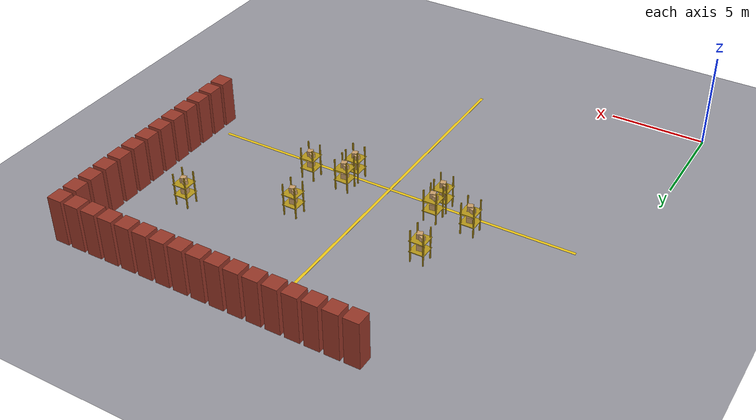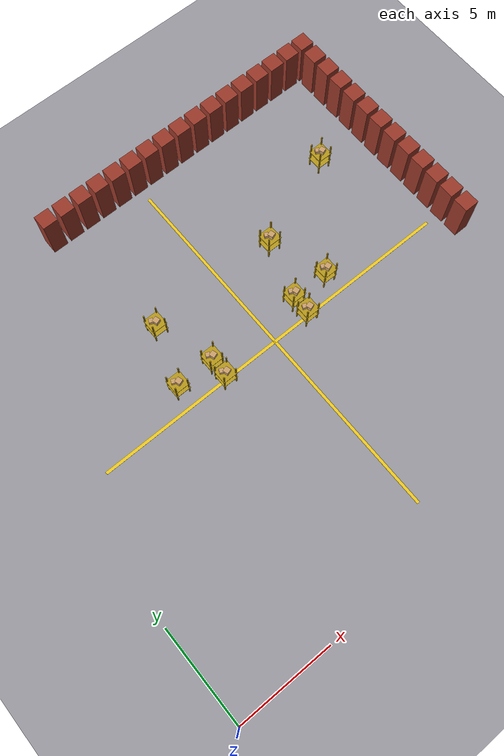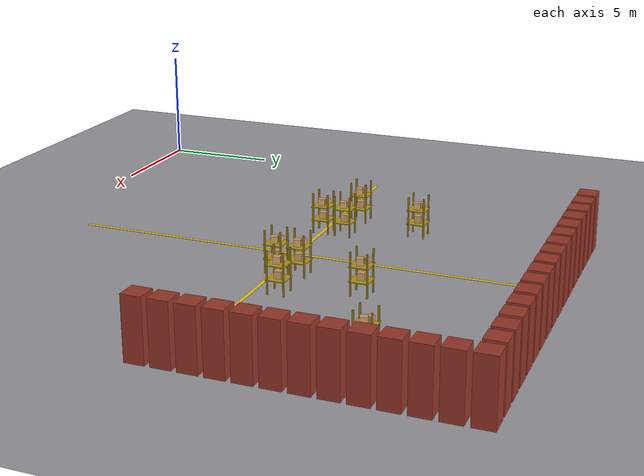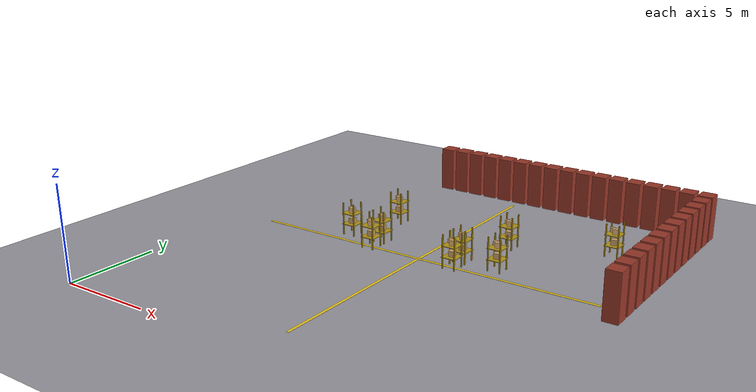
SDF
<sdf version="1.9">
 <world name="agv_nav">
  <model name="ground_plane">
   <static>true</static>
   <link name="link">
    <collision name="collision">
     <geometry><plane><normal>0 0 1</normal><size>100 100</size></plane></geometry>
    </collision>
    <visual name="visual">
     <geometry><plane><normal>0 0 1</normal><size>100 100</size></plane></geometry>
     <material>
      <ambient>0.55 0.55 0.58 1</ambient>
      <diffuse>0.6 0.6 0.63 1</diffuse>
      <specular>0.2 0.2 0.2 1</specular>
     </material>
    </visual>
   </link>
  </model>
  <model name="wall_45">
   <static>true</static>
   <pose>23 11 1.25 0 0 0</pose>
   <link name="link">
    <collision name="collision"><geometry><box><size>0.8 0.8 2.5</size></box></geometry></collision>
    <visual name="visual">
     <geometry><box><size>0.8 0.8 2.5</size></box></geometry>
     <material>
      <ambient>0.5 0.18 0.14 1</ambient>
      <diffuse>0.6 0.22 0.16 1</diffuse>
      <specular>0.1 0.1 0.1 1</specular>
     </material>
    </visual>
   </link>
  </model>
  <model name="obs_18">
   <static>true</static>
   <pose>9 12 0.9 0 0 0</pose>
   <link name="link">
    <collision name="collision"><geometry><box><size>0.8 0.8 1.8</size></box></geometry></collision>
    <visual name="post_0">
     <pose>0.34 0.34 0 0 0 0</pose>
     <geometry><box><size>0.06 0.06 1.8</size></box></geometry>
     <material><ambient>0.55 0.45 0.05 1</ambient><diffuse>0.65 0.52 0.06 1</diffuse></material>
    </visual>
    <visual name="post_1">
     <pose>-0.34 0.34 0 0 0 0</pose>
     <geometry><box><size>0.06 0.06 1.8</size></box></geometry>
     <material><ambient>0.55 0.45 0.05 1</ambient><diffuse>0.65 0.52 0.06 1</diffuse></material>
    </visual>
    <visual name="post_2">
     <pose>0.34 -0.34 0 0 0 0</pose>
     <geometry><box><size>0.06 0.06 1.8</size></box></geometry>
     <material><ambient>0.55 0.45 0.05 1</ambient><diffuse>0.65 0.52 0.06 1</diffuse></material>
    </visual>
    <visual name="post_3">
     <pose>-0.34 -0.34 0 0 0 0</pose>
     <geometry><box><size>0.06 0.06 1.8</size></box></geometry>
     <material><ambient>0.55 0.45 0.05 1</ambient><diffuse>0.65 0.52 0.06 1</diffuse></material>
    </visual>
    <visual name="plank_0">
     <pose>0 0 -0.3 0 0 0</pose>
     <geometry><box><size>0.8 0.8 0.04</size></box></geometry>
     <material><ambient>0.6 0.5 0.08 1</ambient><diffuse>0.72 0.6 0.1 1</diffuse></material>
    </visual>
    <visual name="plank_1">
     <pose>0 0 0.3 0 0 0</pose>
     <geometry><box><size>0.8 0.8 0.04</size></box></geometry>
     <material><ambient>0.6 0.5 0.08 1</ambient><diffuse>0.72 0.6 0.1 1</diffuse></material>
    </visual>
    <visual name="cbox_0">
     <pose>0.05 -0.05 0.47 0 0 0.3</pose>
     <geometry><box><size>0.28 0.28 0.28</size></box></geometry>
     <material><ambient>0.72 0.56 0.38 1</ambient><diffuse>0.8 0.63 0.42 1</diffuse></material>
    </visual>
    <visual name="cbox_1">
     <pose>-0.15 0.1 0.47 0 0 -0.4</pose>
     <geometry><box><size>0.22 0.22 0.22</size></box></geometry>
     <material><ambient>0.72 0.56 0.38 1</ambient><diffuse>0.8 0.63 0.42 1</diffuse></material>
    </visual>
    <visual name="cbox_2">
     <pose>0.0 0.0 -0.13 0 0 0.1</pose>
     <geometry><box><size>0.3 0.3 0.3</size></box></geometry>
     <material><ambient>0.72 0.56 0.38 1</ambient><diffuse>0.8 0.63 0.42 1</diffuse></material>
    </visual>
   </link>
  </model>
  <model name="obs_19">
   <static>true</static>
   <pose>14 12 0.9 0 0 0</pose>
   <link name="link">
    <collision name="collision"><geometry><box><size>0.8 0.8 1.8</size></box></geometry></collision>
    <visual name="post_0">
     <pose>0.34 0.34 0 0 0 0</pose>
     <geometry><box><size>0.06 0.06 1.8</size></box></geometry>
     <material><ambient>0.55 0.45 0.05 1</ambient><diffuse>0.65 0.52 0.06 1</diffuse></material>
    </visual>
    <visual name="post_1">
     <pose>-0.34 0.34 0 0 0 0</pose>
     <geometry><box><size>0.06 0.06 1.8</size></box></geometry>
     <material><ambient>0.55 0.45 0.05 1</ambient><diffuse>0.65 0.52 0.06 1</diffuse></material>
    </visual>
    <visual name="post_2">
     <pose>0.34 -0.34 0 0 0 0</pose>
     <geometry><box><size>0.06 0.06 1.8</size></box></geometry>
     <material><ambient>0.55 0.45 0.05 1</ambient><diffuse>0.65 0.52 0.06 1</diffuse></material>
    </visual>
    <visual name="post_3">
     <pose>-0.34 -0.34 0 0 0 0</pose>
     <geometry><box><size>0.06 0.06 1.8</size></box></geometry>
     <material><ambient>0.55 0.45 0.05 1</ambient><diffuse>0.65 0.52 0.06 1</diffuse></material>
    </visual>
    <visual name="plank_0">
     <pose>0 0 -0.3 0 0 0</pose>
     <geometry><box><size>0.8 0.8 0.04</size></box></geometry>
     <material><ambient>0.6 0.5 0.08 1</ambient><diffuse>0.72 0.6 0.1 1</diffuse></material>
    </visual>
    <visual name="plank_1">
     <pose>0 0 0.3 0 0 0</pose>
     <geometry><box><size>0.8 0.8 0.04</size></box></geometry>
     <material><ambient>0.6 0.5 0.08 1</ambient><diffuse>0.72 0.6 0.1 1</diffuse></material>
    </visual>
    <visual name="cbox_0">
     <pose>0.05 -0.05 0.47 0 0 0.3</pose>
     <geometry><box><size>0.28 0.28 0.28</size></box></geometry>
     <material><ambient>0.72 0.56 0.38 1</ambient><diffuse>0.8 0.63 0.42 1</diffuse></material>
    </visual>
    <visual name="cbox_1">
     <pose>-0.15 0.1 0.47 0 0 -0.4</pose>
     <geometry><box><size>0.22 0.22 0.22</size></box></geometry>
     <material><ambient>0.72 0.56 0.38 1</ambient><diffuse>0.8 0.63 0.42 1</diffuse></material>
    </visual>
    <visual name="cbox_2">
     <pose>0.0 0.0 -0.13 0 0 0.1</pose>
     <geometry><box><size>0.3 0.3 0.3</size></box></geometry>
     <material><ambient>0.72 0.56 0.38 1</ambient><diffuse>0.8 0.63 0.42 1</diffuse></material>
    </visual>
   </link>
  </model>
  <model name="wall_47">
   <static>true</static>
   <pose>23 12 1.25 0 0 0</pose>
   <link name="link">
    <collision name="collision"><geometry><box><size>0.8 0.8 2.5</size></box></geometry></collision>
    <visual name="visual">
     <geometry><box><size>0.8 0.8 2.5</size></box></geometry>
     <material>
      <ambient>0.5 0.18 0.14 1</ambient>
      <diffuse>0.6 0.22 0.16 1</diffuse>
      <specular>0.1 0.1 0.1 1</specular>
     </material>
    </visual>
   </link>
  </model>
  <model name="obs_20">
   <static>true</static>
   <pose>7 13 0.9 0 0 0</pose>
   <link name="link">
    <collision name="collision"><geometry><box><size>0.8 0.8 1.8</size></box></geometry></collision>
    <visual name="post_0">
     <pose>0.34 0.34 0 0 0 0</pose>
     <geometry><box><size>0.06 0.06 1.8</size></box></geometry>
     <material><ambient>0.55 0.45 0.05 1</ambient><diffuse>0.65 0.52 0.06 1</diffuse></material>
    </visual>
    <visual name="post_1">
     <pose>-0.34 0.34 0 0 0 0</pose>
     <geometry><box><size>0.06 0.06 1.8</size></box></geometry>
     <material><ambient>0.55 0.45 0.05 1</ambient><diffuse>0.65 0.52 0.06 1</diffuse></material>
    </visual>
    <visual name="post_2">
     <pose>0.34 -0.34 0 0 0 0</pose>
     <geometry><box><size>0.06 0.06 1.8</size></box></geometry>
     <material><ambient>0.55 0.45 0.05 1</ambient><diffuse>0.65 0.52 0.06 1</diffuse></material>
    </visual>
    <visual name="post_3">
     <pose>-0.34 -0.34 0 0 0 0</pose>
     <geometry><box><size>0.06 0.06 1.8</size></box></geometry>
     <material><ambient>0.55 0.45 0.05 1</ambient><diffuse>0.65 0.52 0.06 1</diffuse></material>
    </visual>
    <visual name="plank_0">
     <pose>0 0 -0.3 0 0 0</pose>
     <geometry><box><size>0.8 0.8 0.04</size></box></geometry>
     <material><ambient>0.6 0.5 0.08 1</ambient><diffuse>0.72 0.6 0.1 1</diffuse></material>
    </visual>
    <visual name="plank_1">
     <pose>0 0 0.3 0 0 0</pose>
     <geometry><box><size>0.8 0.8 0.04</size></box></geometry>
     <material><ambient>0.6 0.5 0.08 1</ambient><diffuse>0.72 0.6 0.1 1</diffuse></material>
    </visual>
    <visual name="cbox_0">
     <pose>0.05 -0.05 0.47 0 0 0.3</pose>
     <geometry><box><size>0.28 0.28 0.28</size></box></geometry>
     <material><ambient>0.72 0.56 0.38 1</ambient><diffuse>0.8 0.63 0.42 1</diffuse></material>
    </visual>
    <visual name="cbox_1">
     <pose>-0.15 0.1 0.47 0 0 -0.4</pose>
     <geometry><box><size>0.22 0.22 0.22</size></box></geometry>
     <material><ambient>0.72 0.56 0.38 1</ambient><diffuse>0.8 0.63 0.42 1</diffuse></material>
    </visual>
    <visual name="cbox_2">
     <pose>0.0 0.0 -0.13 0 0 0.1</pose>
     <geometry><box><size>0.3 0.3 0.3</size></box></geometry>
     <material><ambient>0.72 0.56 0.38 1</ambient><diffuse>0.8 0.63 0.42 1</diffuse></material>
    </visual>
   </link>
  </model>
  <model name="obs_21">
   <static>true</static>
   <pose>9 13 0.9 0 0 0</pose>
   <link name="link">
    <collision name="collision"><geometry><box><size>0.8 0.8 1.8</size></box></geometry></collision>
    <visual name="post_0">
     <pose>0.34 0.34 0 0 0 0</pose>
     <geometry><box><size>0.06 0.06 1.8</size></box></geometry>
     <material><ambient>0.55 0.45 0.05 1</ambient><diffuse>0.65 0.52 0.06 1</diffuse></material>
    </visual>
    <visual name="post_1">
     <pose>-0.34 0.34 0 0 0 0</pose>
     <geometry><box><size>0.06 0.06 1.8</size></box></geometry>
     <material><ambient>0.55 0.45 0.05 1</ambient><diffuse>0.65 0.52 0.06 1</diffuse></material>
    </visual>
    <visual name="post_2">
     <pose>0.34 -0.34 0 0 0 0</pose>
     <geometry><box><size>0.06 0.06 1.8</size></box></geometry>
     <material><ambient>0.55 0.45 0.05 1</ambient><diffuse>0.65 0.52 0.06 1</diffuse></material>
    </visual>
    <visual name="post_3">
     <pose>-0.34 -0.34 0 0 0 0</pose>
     <geometry><box><size>0.06 0.06 1.8</size></box></geometry>
     <material><ambient>0.55 0.45 0.05 1</ambient><diffuse>0.65 0.52 0.06 1</diffuse></material>
    </visual>
    <visual name="plank_0">
     <pose>0 0 -0.3 0 0 0</pose>
     <geometry><box><size>0.8 0.8 0.04</size></box></geometry>
     <material><ambient>0.6 0.5 0.08 1</ambient><diffuse>0.72 0.6 0.1 1</diffuse></material>
    </visual>
    <visual name="plank_1">
     <pose>0 0 0.3 0 0 0</pose>
     <geometry><box><size>0.8 0.8 0.04</size></box></geometry>
     <material><ambient>0.6 0.5 0.08 1</ambient><diffuse>0.72 0.6 0.1 1</diffuse></material>
    </visual>
    <visual name="cbox_0">
     <pose>0.05 -0.05 0.47 0 0 0.3</pose>
     <geometry><box><size>0.28 0.28 0.28</size></box></geometry>
     <material><ambient>0.72 0.56 0.38 1</ambient><diffuse>0.8 0.63 0.42 1</diffuse></material>
    </visual>
    <visual name="cbox_1">
     <pose>-0.15 0.1 0.47 0 0 -0.4</pose>
     <geometry><box><size>0.22 0.22 0.22</size></box></geometry>
     <material><ambient>0.72 0.56 0.38 1</ambient><diffuse>0.8 0.63 0.42 1</diffuse></material>
    </visual>
    <visual name="cbox_2">
     <pose>0.0 0.0 -0.13 0 0 0.1</pose>
     <geometry><box><size>0.3 0.3 0.3</size></box></geometry>
     <material><ambient>0.72 0.56 0.38 1</ambient><diffuse>0.8 0.63 0.42 1</diffuse></material>
    </visual>
   </link>
  </model>
  <model name="obs_22">
   <static>true</static>
   <pose>14 13 0.9 0 0 0</pose>
   <link name="link">
    <collision name="collision"><geometry><box><size>0.8 0.8 1.8</size></box></geometry></collision>
    <visual name="post_0">
     <pose>0.34 0.34 0 0 0 0</pose>
     <geometry><box><size>0.06 0.06 1.8</size></box></geometry>
     <material><ambient>0.55 0.45 0.05 1</ambient><diffuse>0.65 0.52 0.06 1</diffuse></material>
    </visual>
    <visual name="post_1">
     <pose>-0.34 0.34 0 0 0 0</pose>
     <geometry><box><size>0.06 0.06 1.8</size></box></geometry>
     <material><ambient>0.55 0.45 0.05 1</ambient><diffuse>0.65 0.52 0.06 1</diffuse></material>
    </visual>
    <visual name="post_2">
     <pose>0.34 -0.34 0 0 0 0</pose>
     <geometry><box><size>0.06 0.06 1.8</size></box></geometry>
     <material><ambient>0.55 0.45 0.05 1</ambient><diffuse>0.65 0.52 0.06 1</diffuse></material>
    </visual>
    <visual name="post_3">
     <pose>-0.34 -0.34 0 0 0 0</pose>
     <geometry><box><size>0.06 0.06 1.8</size></box></geometry>
     <material><ambient>0.55 0.45 0.05 1</ambient><diffuse>0.65 0.52 0.06 1</diffuse></material>
    </visual>
    <visual name="plank_0">
     <pose>0 0 -0.3 0 0 0</pose>
     <geometry><box><size>0.8 0.8 0.04</size></box></geometry>
     <material><ambient>0.6 0.5 0.08 1</ambient><diffuse>0.72 0.6 0.1 1</diffuse></material>
    </visual>
    <visual name="plank_1">
     <pose>0 0 0.3 0 0 0</pose>
     <geometry><box><size>0.8 0.8 0.04</size></box></geometry>
     <material><ambient>0.6 0.5 0.08 1</ambient><diffuse>0.72 0.6 0.1 1</diffuse></material>
    </visual>
    <visual name="cbox_0">
     <pose>0.05 -0.05 0.47 0 0 0.3</pose>
     <geometry><box><size>0.28 0.28 0.28</size></box></geometry>
     <material><ambient>0.72 0.56 0.38 1</ambient><diffuse>0.8 0.63 0.42 1</diffuse></material>
    </visual>
    <visual name="cbox_1">
     <pose>-0.15 0.1 0.47 0 0 -0.4</pose>
     <geometry><box><size>0.22 0.22 0.22</size></box></geometry>
     <material><ambient>0.72 0.56 0.38 1</ambient><diffuse>0.8 0.63 0.42 1</diffuse></material>
    </visual>
    <visual name="cbox_2">
     <pose>0.0 0.0 -0.13 0 0 0.1</pose>
     <geometry><box><size>0.3 0.3 0.3</size></box></geometry>
     <material><ambient>0.72 0.56 0.38 1</ambient><diffuse>0.8 0.63 0.42 1</diffuse></material>
    </visual>
   </link>
  </model>
  <model name="obs_23">
   <static>true</static>
   <pose>16 13 0.9 0 0 0</pose>
   <link name="link">
    <collision name="collision"><geometry><box><size>0.8 0.8 1.8</size></box></geometry></collision>
    <visual name="post_0">
     <pose>0.34 0.34 0 0 0 0</pose>
     <geometry><box><size>0.06 0.06 1.8</size></box></geometry>
     <material><ambient>0.55 0.45 0.05 1</ambient><diffuse>0.65 0.52 0.06 1</diffuse></material>
    </visual>
    <visual name="post_1">
     <pose>-0.34 0.34 0 0 0 0</pose>
     <geometry><box><size>0.06 0.06 1.8</size></box></geometry>
     <material><ambient>0.55 0.45 0.05 1</ambient><diffuse>0.65 0.52 0.06 1</diffuse></material>
    </visual>
    <visual name="post_2">
     <pose>0.34 -0.34 0 0 0 0</pose>
     <geometry><box><size>0.06 0.06 1.8</size></box></geometry>
     <material><ambient>0.55 0.45 0.05 1</ambient><diffuse>0.65 0.52 0.06 1</diffuse></material>
    </visual>
    <visual name="post_3">
     <pose>-0.34 -0.34 0 0 0 0</pose>
     <geometry><box><size>0.06 0.06 1.8</size></box></geometry>
     <material><ambient>0.55 0.45 0.05 1</ambient><diffuse>0.65 0.52 0.06 1</diffuse></material>
    </visual>
    <visual name="plank_0">
     <pose>0 0 -0.3 0 0 0</pose>
     <geometry><box><size>0.8 0.8 0.04</size></box></geometry>
     <material><ambient>0.6 0.5 0.08 1</ambient><diffuse>0.72 0.6 0.1 1</diffuse></material>
    </visual>
    <visual name="plank_1">
     <pose>0 0 0.3 0 0 0</pose>
     <geometry><box><size>0.8 0.8 0.04</size></box></geometry>
     <material><ambient>0.6 0.5 0.08 1</ambient><diffuse>0.72 0.6 0.1 1</diffuse></material>
    </visual>
    <visual name="cbox_0">
     <pose>0.05 -0.05 0.47 0 0 0.3</pose>
     <geometry><box><size>0.28 0.28 0.28</size></box></geometry>
     <material><ambient>0.72 0.56 0.38 1</ambient><diffuse>0.8 0.63 0.42 1</diffuse></material>
    </visual>
    <visual name="cbox_1">
     <pose>-0.15 0.1 0.47 0 0 -0.4</pose>
     <geometry><box><size>0.22 0.22 0.22</size></box></geometry>
     <material><ambient>0.72 0.56 0.38 1</ambient><diffuse>0.8 0.63 0.42 1</diffuse></material>
    </visual>
    <visual name="cbox_2">
     <pose>0.0 0.0 -0.13 0 0 0.1</pose>
     <geometry><box><size>0.3 0.3 0.3</size></box></geometry>
     <material><ambient>0.72 0.56 0.38 1</ambient><diffuse>0.8 0.63 0.42 1</diffuse></material>
    </visual>
   </link>
  </model>
  <model name="wall_49">
   <static>true</static>
   <pose>23 13 1.25 0 0 0</pose>
   <link name="link">
    <collision name="collision"><geometry><box><size>0.8 0.8 2.5</size></box></geometry></collision>
    <visual name="visual">
     <geometry><box><size>0.8 0.8 2.5</size></box></geometry>
     <material>
      <ambient>0.5 0.18 0.14 1</ambient>
      <diffuse>0.6 0.22 0.16 1</diffuse>
      <specular>0.1 0.1 0.1 1</specular>
     </material>
    </visual>
   </link>
  </model>
  <model name="wall_51">
   <static>true</static>
   <pose>23 14 1.25 0 0 0</pose>
   <link name="link">
    <collision name="collision"><geometry><box><size>0.8 0.8 2.5</size></box></geometry></collision>
    <visual name="visual">
     <geometry><box><size>0.8 0.8 2.5</size></box></geometry>
     <material>
      <ambient>0.5 0.18 0.14 1</ambient>
      <diffuse>0.6 0.22 0.16 1</diffuse>
      <specular>0.1 0.1 0.1 1</specular>
     </material>
    </visual>
   </link>
  </model>
  <model name="wall_53">
   <static>true</static>
   <pose>23 15 1.25 0 0 0</pose>
   <link name="link">
    <collision name="collision"><geometry><box><size>0.8 0.8 2.5</size></box></geometry></collision>
    <visual name="visual">
     <geometry><box><size>0.8 0.8 2.5</size></box></geometry>
     <material>
      <ambient>0.5 0.18 0.14 1</ambient>
      <diffuse>0.6 0.22 0.16 1</diffuse>
      <specular>0.1 0.1 0.1 1</specular>
     </material>
    </visual>
   </link>
  </model>
  <model name="obs_24">
   <static>true</static>
   <pose>8 16 0.9 0 0 0</pose>
   <link name="link">
    <collision name="collision"><geometry><box><size>0.8 0.8 1.8</size></box></geometry></collision>
    <visual name="post_0">
     <pose>0.34 0.34 0 0 0 0</pose>
     <geometry><box><size>0.06 0.06 1.8</size></box></geometry>
     <material><ambient>0.55 0.45 0.05 1</ambient><diffuse>0.65 0.52 0.06 1</diffuse></material>
    </visual>
    <visual name="post_1">
     <pose>-0.34 0.34 0 0 0 0</pose>
     <geometry><box><size>0.06 0.06 1.8</size></box></geometry>
     <material><ambient>0.55 0.45 0.05 1</ambient><diffuse>0.65 0.52 0.06 1</diffuse></material>
    </visual>
    <visual name="post_2">
     <pose>0.34 -0.34 0 0 0 0</pose>
     <geometry><box><size>0.06 0.06 1.8</size></box></geometry>
     <material><ambient>0.55 0.45 0.05 1</ambient><diffuse>0.65 0.52 0.06 1</diffuse></material>
    </visual>
    <visual name="post_3">
     <pose>-0.34 -0.34 0 0 0 0</pose>
     <geometry><box><size>0.06 0.06 1.8</size></box></geometry>
     <material><ambient>0.55 0.45 0.05 1</ambient><diffuse>0.65 0.52 0.06 1</diffuse></material>
    </visual>
    <visual name="plank_0">
     <pose>0 0 -0.3 0 0 0</pose>
     <geometry><box><size>0.8 0.8 0.04</size></box></geometry>
     <material><ambient>0.6 0.5 0.08 1</ambient><diffuse>0.72 0.6 0.1 1</diffuse></material>
    </visual>
    <visual name="plank_1">
     <pose>0 0 0.3 0 0 0</pose>
     <geometry><box><size>0.8 0.8 0.04</size></box></geometry>
     <material><ambient>0.6 0.5 0.08 1</ambient><diffuse>0.72 0.6 0.1 1</diffuse></material>
    </visual>
    <visual name="cbox_0">
     <pose>0.05 -0.05 0.47 0 0 0.3</pose>
     <geometry><box><size>0.28 0.28 0.28</size></box></geometry>
     <material><ambient>0.72 0.56 0.38 1</ambient><diffuse>0.8 0.63 0.42 1</diffuse></material>
    </visual>
    <visual name="cbox_1">
     <pose>-0.15 0.1 0.47 0 0 -0.4</pose>
     <geometry><box><size>0.22 0.22 0.22</size></box></geometry>
     <material><ambient>0.72 0.56 0.38 1</ambient><diffuse>0.8 0.63 0.42 1</diffuse></material>
    </visual>
    <visual name="cbox_2">
     <pose>0.0 0.0 -0.13 0 0 0.1</pose>
     <geometry><box><size>0.3 0.3 0.3</size></box></geometry>
     <material><ambient>0.72 0.56 0.38 1</ambient><diffuse>0.8 0.63 0.42 1</diffuse></material>
    </visual>
   </link>
  </model>
  <model name="obs_25">
   <static>true</static>
   <pose>15 16 0.9 0 0 0</pose>
   <link name="link">
    <collision name="collision"><geometry><box><size>0.8 0.8 1.8</size></box></geometry></collision>
    <visual name="post_0">
     <pose>0.34 0.34 0 0 0 0</pose>
     <geometry><box><size>0.06 0.06 1.8</size></box></geometry>
     <material><ambient>0.55 0.45 0.05 1</ambient><diffuse>0.65 0.52 0.06 1</diffuse></material>
    </visual>
    <visual name="post_1">
     <pose>-0.34 0.34 0 0 0 0</pose>
     <geometry><box><size>0.06 0.06 1.8</size></box></geometry>
     <material><ambient>0.55 0.45 0.05 1</ambient><diffuse>0.65 0.52 0.06 1</diffuse></material>
    </visual>
    <visual name="post_2">
     <pose>0.34 -0.34 0 0 0 0</pose>
     <geometry><box><size>0.06 0.06 1.8</size></box></geometry>
     <material><ambient>0.55 0.45 0.05 1</ambient><diffuse>0.65 0.52 0.06 1</diffuse></material>
    </visual>
    <visual name="post_3">
     <pose>-0.34 -0.34 0 0 0 0</pose>
     <geometry><box><size>0.06 0.06 1.8</size></box></geometry>
     <material><ambient>0.55 0.45 0.05 1</ambient><diffuse>0.65 0.52 0.06 1</diffuse></material>
    </visual>
    <visual name="plank_0">
     <pose>0 0 -0.3 0 0 0</pose>
     <geometry><box><size>0.8 0.8 0.04</size></box></geometry>
     <material><ambient>0.6 0.5 0.08 1</ambient><diffuse>0.72 0.6 0.1 1</diffuse></material>
    </visual>
    <visual name="plank_1">
     <pose>0 0 0.3 0 0 0</pose>
     <geometry><box><size>0.8 0.8 0.04</size></box></geometry>
     <material><ambient>0.6 0.5 0.08 1</ambient><diffuse>0.72 0.6 0.1 1</diffuse></material>
    </visual>
    <visual name="cbox_0">
     <pose>0.05 -0.05 0.47 0 0 0.3</pose>
     <geometry><box><size>0.28 0.28 0.28</size></box></geometry>
     <material><ambient>0.72 0.56 0.38 1</ambient><diffuse>0.8 0.63 0.42 1</diffuse></material>
    </visual>
    <visual name="cbox_1">
     <pose>-0.15 0.1 0.47 0 0 -0.4</pose>
     <geometry><box><size>0.22 0.22 0.22</size></box></geometry>
     <material><ambient>0.72 0.56 0.38 1</ambient><diffuse>0.8 0.63 0.42 1</diffuse></material>
    </visual>
    <visual name="cbox_2">
     <pose>0.0 0.0 -0.13 0 0 0.1</pose>
     <geometry><box><size>0.3 0.3 0.3</size></box></geometry>
     <material><ambient>0.72 0.56 0.38 1</ambient><diffuse>0.8 0.63 0.42 1</diffuse></material>
    </visual>
   </link>
  </model>
  <model name="wall_55">
   <static>true</static>
   <pose>23 16 1.25 0 0 0</pose>
   <link name="link">
    <collision name="collision"><geometry><box><size>0.8 0.8 2.5</size></box></geometry></collision>
    <visual name="visual">
     <geometry><box><size>0.8 0.8 2.5</size></box></geometry>
     <material>
      <ambient>0.5 0.18 0.14 1</ambient>
      <diffuse>0.6 0.22 0.16 1</diffuse>
      <specular>0.1 0.1 0.1 1</specular>
     </material>
    </visual>
   </link>
  </model>
  <model name="wall_57">
   <static>true</static>
   <pose>23 17 1.25 0 0 0</pose>
   <link name="link">
    <collision name="collision"><geometry><box><size>0.8 0.8 2.5</size></box></geometry></collision>
    <visual name="visual">
     <geometry><box><size>0.8 0.8 2.5</size></box></geometry>
     <material>
      <ambient>0.5 0.18 0.14 1</ambient>
      <diffuse>0.6 0.22 0.16 1</diffuse>
      <specular>0.1 0.1 0.1 1</specular>
     </material>
    </visual>
   </link>
  </model>
  <model name="obs_27">
   <static>true</static>
   <pose>20 18 0.9 0 0 0</pose>
   <link name="link">
    <collision name="collision"><geometry><box><size>0.8 0.8 1.8</size></box></geometry></collision>
    <visual name="post_0">
     <pose>0.34 0.34 0 0 0 0</pose>
     <geometry><box><size>0.06 0.06 1.8</size></box></geometry>
     <material><ambient>0.55 0.45 0.05 1</ambient><diffuse>0.65 0.52 0.06 1</diffuse></material>
    </visual>
    <visual name="post_1">
     <pose>-0.34 0.34 0 0 0 0</pose>
     <geometry><box><size>0.06 0.06 1.8</size></box></geometry>
     <material><ambient>0.55 0.45 0.05 1</ambient><diffuse>0.65 0.52 0.06 1</diffuse></material>
    </visual>
    <visual name="post_2">
     <pose>0.34 -0.34 0 0 0 0</pose>
     <geometry><box><size>0.06 0.06 1.8</size></box></geometry>
     <material><ambient>0.55 0.45 0.05 1</ambient><diffuse>0.65 0.52 0.06 1</diffuse></material>
    </visual>
    <visual name="post_3">
     <pose>-0.34 -0.34 0 0 0 0</pose>
     <geometry><box><size>0.06 0.06 1.8</size></box></geometry>
     <material><ambient>0.55 0.45 0.05 1</ambient><diffuse>0.65 0.52 0.06 1</diffuse></material>
    </visual>
    <visual name="plank_0">
     <pose>0 0 -0.3 0 0 0</pose>
     <geometry><box><size>0.8 0.8 0.04</size></box></geometry>
     <material><ambient>0.6 0.5 0.08 1</ambient><diffuse>0.72 0.6 0.1 1</diffuse></material>
    </visual>
    <visual name="plank_1">
     <pose>0 0 0.3 0 0 0</pose>
     <geometry><box><size>0.8 0.8 0.04</size></box></geometry>
     <material><ambient>0.6 0.5 0.08 1</ambient><diffuse>0.72 0.6 0.1 1</diffuse></material>
    </visual>
    <visual name="cbox_0">
     <pose>0.05 -0.05 0.47 0 0 0.3</pose>
     <geometry><box><size>0.28 0.28 0.28</size></box></geometry>
     <material><ambient>0.72 0.56 0.38 1</ambient><diffuse>0.8 0.63 0.42 1</diffuse></material>
    </visual>
    <visual name="cbox_1">
     <pose>-0.15 0.1 0.47 0 0 -0.4</pose>
     <geometry><box><size>0.22 0.22 0.22</size></box></geometry>
     <material><ambient>0.72 0.56 0.38 1</ambient><diffuse>0.8 0.63 0.42 1</diffuse></material>
    </visual>
    <visual name="cbox_2">
     <pose>0.0 0.0 -0.13 0 0 0.1</pose>
     <geometry><box><size>0.3 0.3 0.3</size></box></geometry>
     <material><ambient>0.72 0.56 0.38 1</ambient><diffuse>0.8 0.63 0.42 1</diffuse></material>
    </visual>
   </link>
  </model>
  <model name="wall_59">
   <static>true</static>
   <pose>23 18 1.25 0 0 0</pose>
   <link name="link">
    <collision name="collision"><geometry><box><size>0.8 0.8 2.5</size></box></geometry></collision>
    <visual name="visual">
     <geometry><box><size>0.8 0.8 2.5</size></box></geometry>
     <material>
      <ambient>0.5 0.18 0.14 1</ambient>
      <diffuse>0.6 0.22 0.16 1</diffuse>
      <specular>0.1 0.1 0.1 1</specular>
     </material>
    </visual>
   </link>
  </model>
  <model name="wall_61">
   <static>true</static>
   <pose>23 19 1.25 0 0 0</pose>
   <link name="link">
    <collision name="collision"><geometry><box><size>0.8 0.8 2.5</size></box></geometry></collision>
    <visual name="visual">
     <geometry><box><size>0.8 0.8 2.5</size></box></geometry>
     <material>
      <ambient>0.5 0.18 0.14 1</ambient>
      <diffuse>0.6 0.22 0.16 1</diffuse>
      <specular>0.1 0.1 0.1 1</specular>
     </material>
    </visual>
   </link>
  </model>
  <model name="wall_63">
   <static>true</static>
   <pose>23 20 1.25 0 0 0</pose>
   <link name="link">
    <collision name="collision"><geometry><box><size>0.8 0.8 2.5</size></box></geometry></collision>
    <visual name="visual">
     <geometry><box><size>0.8 0.8 2.5</size></box></geometry>
     <material>
      <ambient>0.5 0.18 0.14 1</ambient>
      <diffuse>0.6 0.22 0.16 1</diffuse>
      <specular>0.1 0.1 0.1 1</specular>
     </material>
    </visual>
   </link>
  </model>
  <model name="wall_65">
   <static>true</static>
   <pose>23 21 1.25 0 0 0</pose>
   <link name="link">
    <collision name="collision"><geometry><box><size>0.8 0.8 2.5</size></box></geometry></collision>
    <visual name="visual">
     <geometry><box><size>0.8 0.8 2.5</size></box></geometry>
     <material>
      <ambient>0.5 0.18 0.14 1</ambient>
      <diffuse>0.6 0.22 0.16 1</diffuse>
      <specular>0.1 0.1 0.1 1</specular>
     </material>
    </visual>
   </link>
  </model>
  <model name="wall_67">
   <static>true</static>
   <pose>23 22 1.25 0 0 0</pose>
   <link name="link">
    <collision name="collision"><geometry><box><size>0.8 0.8 2.5</size></box></geometry></collision>
    <visual name="visual">
     <geometry><box><size>0.8 0.8 2.5</size></box></geometry>
     <material>
      <ambient>0.5 0.18 0.14 1</ambient>
      <diffuse>0.6 0.22 0.16 1</diffuse>
      <specular>0.1 0.1 0.1 1</specular>
     </material>
    </visual>
   </link>
  </model>
  <model name="wall_75">
   <static>true</static>
   <pose>7 23 1.25 0 0 0</pose>
   <link name="link">
    <collision name="collision"><geometry><box><size>0.8 0.8 2.5</size></box></geometry></collision>
    <visual name="visual">
     <geometry><box><size>0.8 0.8 2.5</size></box></geometry>
     <material>
      <ambient>0.5 0.18 0.14 1</ambient>
      <diffuse>0.6 0.22 0.16 1</diffuse>
      <specular>0.1 0.1 0.1 1</specular>
     </material>
    </visual>
   </link>
  </model>
  <model name="wall_76">
   <static>true</static>
   <pose>8 23 1.25 0 0 0</pose>
   <link name="link">
    <collision name="collision"><geometry><box><size>0.8 0.8 2.5</size></box></geometry></collision>
    <visual name="visual">
     <geometry><box><size>0.8 0.8 2.5</size></box></geometry>
     <material>
      <ambient>0.5 0.18 0.14 1</ambient>
      <diffuse>0.6 0.22 0.16 1</diffuse>
      <specular>0.1 0.1 0.1 1</specular>
     </material>
    </visual>
   </link>
  </model>
  <model name="wall_77">
   <static>true</static>
   <pose>9 23 1.25 0 0 0</pose>
   <link name="link">
    <collision name="collision"><geometry><box><size>0.8 0.8 2.5</size></box></geometry></collision>
    <visual name="visual">
     <geometry><box><size>0.8 0.8 2.5</size></box></geometry>
     <material>
      <ambient>0.5 0.18 0.14 1</ambient>
      <diffuse>0.6 0.22 0.16 1</diffuse>
      <specular>0.1 0.1 0.1 1</specular>
     </material>
    </visual>
   </link>
  </model>
  <model name="wall_78">
   <static>true</static>
   <pose>10 23 1.25 0 0 0</pose>
   <link name="link">
    <collision name="collision"><geometry><box><size>0.8 0.8 2.5</size></box></geometry></collision>
    <visual name="visual">
     <geometry><box><size>0.8 0.8 2.5</size></box></geometry>
     <material>
      <ambient>0.5 0.18 0.14 1</ambient>
      <diffuse>0.6 0.22 0.16 1</diffuse>
      <specular>0.1 0.1 0.1 1</specular>
     </material>
    </visual>
   </link>
  </model>
  <model name="wall_79">
   <static>true</static>
   <pose>11 23 1.25 0 0 0</pose>
   <link name="link">
    <collision name="collision"><geometry><box><size>0.8 0.8 2.5</size></box></geometry></collision>
    <visual name="visual">
     <geometry><box><size>0.8 0.8 2.5</size></box></geometry>
     <material>
      <ambient>0.5 0.18 0.14 1</ambient>
      <diffuse>0.6 0.22 0.16 1</diffuse>
      <specular>0.1 0.1 0.1 1</specular>
     </material>
    </visual>
   </link>
  </model>
  <model name="wall_80">
   <static>true</static>
   <pose>12 23 1.25 0 0 0</pose>
   <link name="link">
    <collision name="collision"><geometry><box><size>0.8 0.8 2.5</size></box></geometry></collision>
    <visual name="visual">
     <geometry><box><size>0.8 0.8 2.5</size></box></geometry>
     <material>
      <ambient>0.5 0.18 0.14 1</ambient>
      <diffuse>0.6 0.22 0.16 1</diffuse>
      <specular>0.1 0.1 0.1 1</specular>
     </material>
    </visual>
   </link>
  </model>
  <model name="wall_81">
   <static>true</static>
   <pose>13 23 1.25 0 0 0</pose>
   <link name="link">
    <collision name="collision"><geometry><box><size>0.8 0.8 2.5</size></box></geometry></collision>
    <visual name="visual">
     <geometry><box><size>0.8 0.8 2.5</size></box></geometry>
     <material>
      <ambient>0.5 0.18 0.14 1</ambient>
      <diffuse>0.6 0.22 0.16 1</diffuse>
      <specular>0.1 0.1 0.1 1</specular>
     </material>
    </visual>
   </link>
  </model>
  <model name="wall_82">
   <static>true</static>
   <pose>14 23 1.25 0 0 0</pose>
   <link name="link">
    <collision name="collision"><geometry><box><size>0.8 0.8 2.5</size></box></geometry></collision>
    <visual name="visual">
     <geometry><box><size>0.8 0.8 2.5</size></box></geometry>
     <material>
      <ambient>0.5 0.18 0.14 1</ambient>
      <diffuse>0.6 0.22 0.16 1</diffuse>
      <specular>0.1 0.1 0.1 1</specular>
     </material>
    </visual>
   </link>
  </model>
  <model name="wall_83">
   <static>true</static>
   <pose>15 23 1.25 0 0 0</pose>
   <link name="link">
    <collision name="collision"><geometry><box><size>0.8 0.8 2.5</size></box></geometry></collision>
    <visual name="visual">
     <geometry><box><size>0.8 0.8 2.5</size></box></geometry>
     <material>
      <ambient>0.5 0.18 0.14 1</ambient>
      <diffuse>0.6 0.22 0.16 1</diffuse>
      <specular>0.1 0.1 0.1 1</specular>
     </material>
    </visual>
   </link>
  </model>
  <model name="wall_84">
   <static>true</static>
   <pose>16 23 1.25 0 0 0</pose>
   <link name="link">
    <collision name="collision"><geometry><box><size>0.8 0.8 2.5</size></box></geometry></collision>
    <visual name="visual">
     <geometry><box><size>0.8 0.8 2.5</size></box></geometry>
     <material>
      <ambient>0.5 0.18 0.14 1</ambient>
      <diffuse>0.6 0.22 0.16 1</diffuse>
      <specular>0.1 0.1 0.1 1</specular>
     </material>
    </visual>
   </link>
  </model>
  <model name="wall_85">
   <static>true</static>
   <pose>17 23 1.25 0 0 0</pose>
   <link name="link">
    <collision name="collision"><geometry><box><size>0.8 0.8 2.5</size></box></geometry></collision>
    <visual name="visual">
     <geometry><box><size>0.8 0.8 2.5</size></box></geometry>
     <material>
      <ambient>0.5 0.18 0.14 1</ambient>
      <diffuse>0.6 0.22 0.16 1</diffuse>
      <specular>0.1 0.1 0.1 1</specular>
     </material>
    </visual>
   </link>
  </model>
  <model name="wall_86">
   <static>true</static>
   <pose>18 23 1.25 0 0 0</pose>
   <link name="link">
    <collision name="collision"><geometry><box><size>0.8 0.8 2.5</size></box></geometry></collision>
    <visual name="visual">
     <geometry><box><size>0.8 0.8 2.5</size></box></geometry>
     <material>
      <ambient>0.5 0.18 0.14 1</ambient>
      <diffuse>0.6 0.22 0.16 1</diffuse>
      <specular>0.1 0.1 0.1 1</specular>
     </material>
    </visual>
   </link>
  </model>
  <model name="wall_87">
   <static>true</static>
   <pose>19 23 1.25 0 0 0</pose>
   <link name="link">
    <collision name="collision"><geometry><box><size>0.8 0.8 2.5</size></box></geometry></collision>
    <visual name="visual">
     <geometry><box><size>0.8 0.8 2.5</size></box></geometry>
     <material>
      <ambient>0.5 0.18 0.14 1</ambient>
      <diffuse>0.6 0.22 0.16 1</diffuse>
      <specular>0.1 0.1 0.1 1</specular>
     </material>
    </visual>
   </link>
  </model>
  <model name="wall_88">
   <static>true</static>
   <pose>20 23 1.25 0 0 0</pose>
   <link name="link">
    <collision name="collision"><geometry><box><size>0.8 0.8 2.5</size></box></geometry></collision>
    <visual name="visual">
     <geometry><box><size>0.8 0.8 2.5</size></box></geometry>
     <material>
      <ambient>0.5 0.18 0.14 1</ambient>
      <diffuse>0.6 0.22 0.16 1</diffuse>
      <specular>0.1 0.1 0.1 1</specular>
     </material>
    </visual>
   </link>
  </model>
  <model name="wall_89">
   <static>true</static>
   <pose>21 23 1.25 0 0 0</pose>
   <link name="link">
    <collision name="collision"><geometry><box><size>0.8 0.8 2.5</size></box></geometry></collision>
    <visual name="visual">
     <geometry><box><size>0.8 0.8 2.5</size></box></geometry>
     <material>
      <ambient>0.5 0.18 0.14 1</ambient>
      <diffuse>0.6 0.22 0.16 1</diffuse>
      <specular>0.1 0.1 0.1 1</specular>
     </material>
    </visual>
   </link>
  </model>
  <model name="wall_90">
   <static>true</static>
   <pose>22 23 1.25 0 0 0</pose>
   <link name="link">
    <collision name="collision"><geometry><box><size>0.8 0.8 2.5</size></box></geometry></collision>
    <visual name="visual">
     <geometry><box><size>0.8 0.8 2.5</size></box></geometry>
     <material>
      <ambient>0.5 0.18 0.14 1</ambient>
      <diffuse>0.6 0.22 0.16 1</diffuse>
      <specular>0.1 0.1 0.1 1</specular>
     </material>
    </visual>
   </link>
  </model>
  <model name="wall_91">
   <static>true</static>
   <pose>23 23 1.25 0 0 0</pose>
   <link name="link">
    <collision name="collision"><geometry><box><size>0.8 0.8 2.5</size></box></geometry></collision>
    <visual name="visual">
     <geometry><box><size>0.8 0.8 2.5</size></box></geometry>
     <material>
      <ambient>0.5 0.18 0.14 1</ambient>
      <diffuse>0.6 0.22 0.16 1</diffuse>
      <specular>0.1 0.1 0.1 1</specular>
     </material>
    </visual>
   </link>
  </model>
  <model name="stripe_h">
   <static>true</static>
   <pose>12.0 12.0 0.01 0 0 0</pose>
   <link name="link">
    <visual name="visual">
     <geometry><box><size>20 0.15 0.01</size></box></geometry>
     <material>
      <ambient>0.9 0.75 0.05 1</ambient>
      <diffuse>0.95 0.8 0.1 1</diffuse>
      <emissive>0.15 0.12 0 1</emissive>
     </material>
    </visual>
   </link>
  </model>
  <model name="stripe_v">
   <static>true</static>
   <pose>12.0 12.0 0.01 0 0 1.5708</pose>
   <link name="link">
    <visual name="visual">
     <geometry><box><size>20 0.15 0.01</size></box></geometry>
     <material>
      <ambient>0.9 0.75 0.05 1</ambient>
      <diffuse>0.95 0.8 0.1 1</diffuse>
      <emissive>0.15 0.12 0 1</emissive>
     </material>
    </visual>
   </link>
  </model>
 </world>
</sdf>
